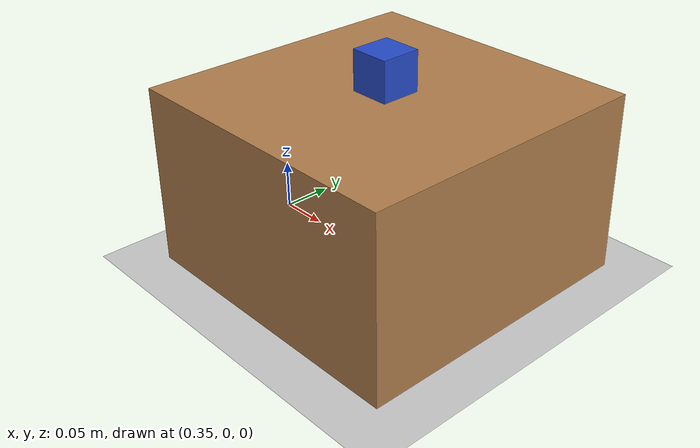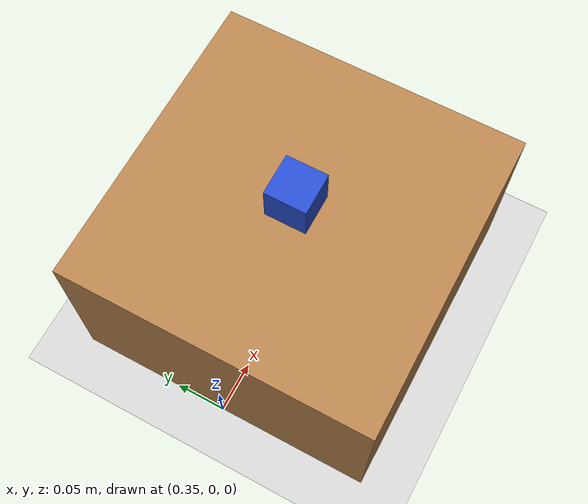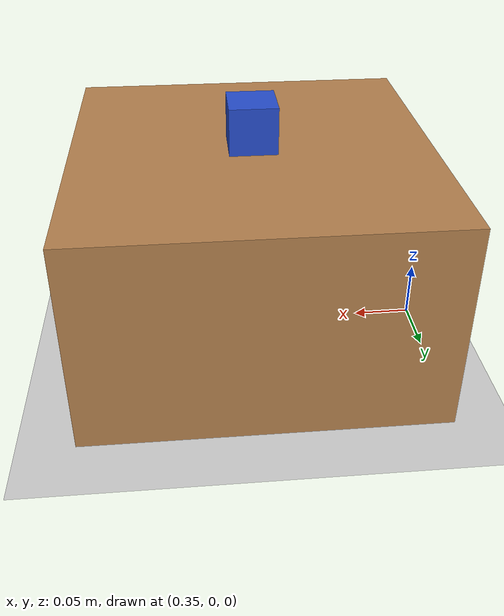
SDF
<?xml version="1.0"?>
<sdf version="1.6">
  <world name="pick_world">

    <!-- Light and ground (bundled with Gazebo, no download needed) -->
    <include>
      <uri>model://sun</uri>
    </include>
    <include>
      <uri>model://ground_plane</uri>
    </include>

    <!-- Table: static (never moves), 0.5 m in front of the arm -->
    <model name="table">
      <static>true</static>
      <pose>0.5 0 0.09 0 0 0</pose>
      <link name="link">
        <collision name="collision">
          <geometry>
            <box><size>0.3 0.3 0.18</size></box>
          </geometry>
        </collision>
        <visual name="visual">
          <geometry>
            <box><size>0.3 0.3 0.18</size></box>
          </geometry>
          <material>
            <script>
              <uri>file://media/materials/scripts/gazebo.material</uri>
              <name>Gazebo/Wood</name>
            </script>
          </material>
        </visual>
      </link>
    </model>

    <!-- Cube to pick up: 4 cm, 50 g, high friction -->
    <model name="cube">
      <pose>0.5 0 0.2 0 0 0</pose>
      <link name="link">
        <inertial>
          <mass>0.05</mass>
          <inertia>
            <ixx>1.33e-5</ixx><iyy>1.33e-5</iyy><izz>1.33e-5</izz>
            <ixy>0</ixy><ixz>0</ixz><iyz>0</iyz>
          </inertia>
        </inertial>
        <collision name="collision">
          <geometry>
            <box><size>0.04 0.04 0.04</size></box>
          </geometry>
          <surface>
            <friction>
              <ode><mu>2.0</mu><mu2>2.0</mu2></ode>
            </friction>
            <contact>
              <ode><kp>1e6</kp><kd>100</kd><min_depth>0.001</min_depth><max_vel>0.1</max_vel></ode>
            </contact>
          </surface>
        </collision>
        <visual name="visual">
          <geometry>
            <box><size>0.04 0.04 0.04</size></box>
          </geometry>
          <material>
            <script>
              <uri>file://media/materials/scripts/gazebo.material</uri>
              <name>Gazebo/Blue</name>
            </script>
          </material>
        </visual>
      </link>
    </model>

  </world>
</sdf>
